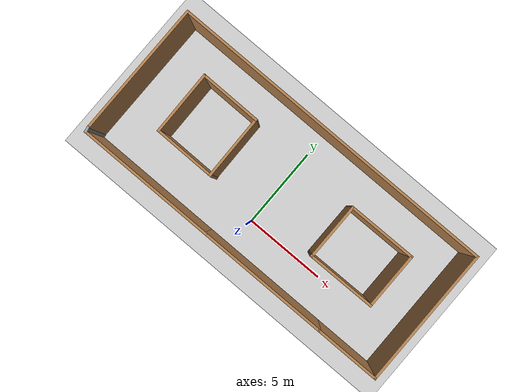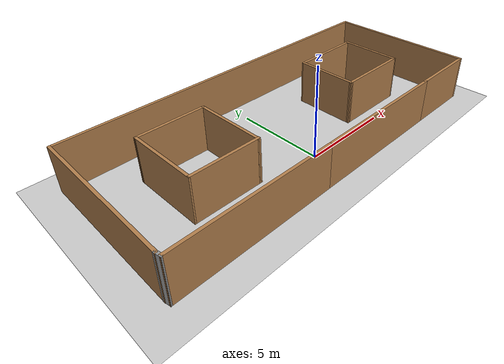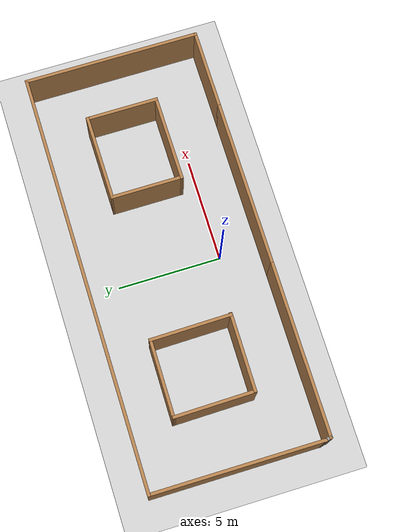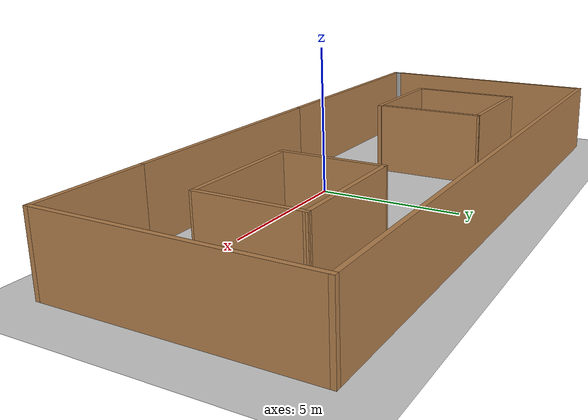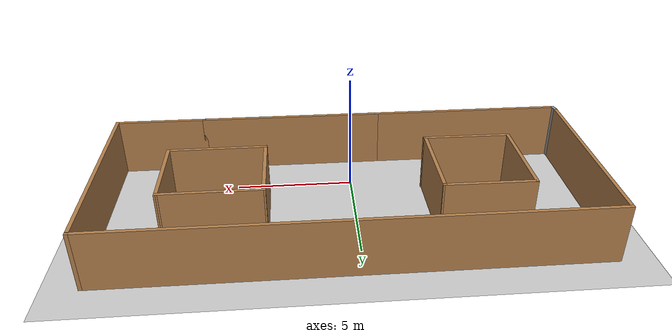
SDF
<sdf version="1.7">
 <world name="default">
  <light name="sun" type="directional">
   <pose>0 0 10 0 -0 0</pose>
   <diffuse>0.8 0.8 0.8 1</diffuse>
   <specular>0.2 0.2 0.2 1</specular>
   <attenuation>
    <range>1000</range>
    <constant>0.9</constant>
    <linear>0.01</linear>
    <quadratic>0.001</quadratic>
   </attenuation>
   <direction>-0.5 0.1 -0.9</direction>
   <spot><inner_angle>0</inner_angle><outer_angle>0</outer_angle><falloff>0</falloff></spot>
  </light>
  <model name="ground_plane">
   <static>1</static>
   <link name="link">
    <collision name="collision">
     <geometry><plane><normal>0 0 1</normal><size>100 100</size></plane></geometry>
     <surface>
      <contact><collide_bitmask>65535</collide_bitmask></contact>
      <friction><ode><mu>100</mu><mu2>50</mu2></ode></friction>
     </surface>
    </collision>
    <visual name="visual">
     <cast_shadows>0</cast_shadows>
     <geometry><plane><normal>0 0 1</normal><size>100 100</size></plane></geometry>
     <material>
      <script><uri>file://media/materials/scripts/gazebo.material</uri><name>Gazebo/Grey</name></script>
     </material>
    </visual>
   </link>
  </model>
  <gravity>0 0 -9.8</gravity>
  <magnetic_field>6e-06 2.3e-05 -4.2e-05</magnetic_field>
  <atmosphere type="adiabatic"/>
  <physics type="ode">
   <max_step_size>0.001</max_step_size>
   <real_time_factor>1</real_time_factor>
   <real_time_update_rate>1000</real_time_update_rate>
  </physics>
  <scene><ambient>0.4 0.4 0.4 1</ambient><background>0.7 0.7 0.7 1</background><shadows>1</shadows></scene>
  <spherical_coordinates>
   <surface_model>EARTH_WGS84</surface_model>
   <latitude_deg>0</latitude_deg>
   <longitude_deg>0</longitude_deg>
   <elevation>0</elevation>
   <heading_deg>0</heading_deg>
  </spherical_coordinates>
  <model name="maze1">
   <pose>0.279015 2.22144 0 0 -0 0</pose>
   <link name="Wall_0">
    <collision name="Wall_0_Collision">
     <geometry><box><size>8 0.15 2.5</size></box></geometry>
     <pose>0 0 1.25 0 -0 0</pose>
    </collision>
    <visual name="Wall_0_Visual">
     <pose>0 0 1.25 0 -0 0</pose>
     <geometry><box><size>8 0.15 2.5</size></box></geometry>
     <material>
      <script><uri>file://media/materials/scripts/gazebo.material</uri><name>Gazebo/Wood</name></script>
      <ambient>1 1 1 1</ambient>
     </material>
     <meta><layer>0</layer></meta>
    </visual>
    <pose>2.28163 -4.16837 0 0 -0 0</pose>
   </link>
   <link name="Wall_1">
    <collision name="Wall_1_Collision">
     <geometry><box><size>4 0.15 2.5</size></box></geometry>
     <pose>0 0 1.25 0 -0 0</pose>
    </collision>
    <visual name="Wall_1_Visual">
     <pose>0 0 1.25 0 -0 0</pose>
     <geometry><box><size>4 0.15 2.5</size></box></geometry>
     <material>
      <script><uri>file://media/materials/scripts/gazebo.material</uri><name>Gazebo/Wood</name></script>
      <ambient>1 1 1 1</ambient>
     </material>
     <meta><layer>0</layer></meta>
    </visual>
    <pose>8.13163 -4.16837 0 0 -0 0</pose>
   </link>
   <link name="Wall_10">
    <collision name="Wall_10_Collision">
     <geometry><box><size>3.5 0.15 2.5</size></box></geometry>
     <pose>0 0 1.25 0 -0 0</pose>
    </collision>
    <visual name="Wall_10_Visual">
     <pose>0 0 1.25 0 -0 0</pose>
     <geometry><box><size>3.5 0.15 2.5</size></box></geometry>
     <material>
      <script><uri>file://media/materials/scripts/gazebo.material</uri><name>Gazebo/Wood</name></script>
      <ambient>1 1 1 1</ambient>
     </material>
     <meta><layer>0</layer></meta>
    </visual>
    <pose>3.38368 0.238862 0 0 -0 -1.5708</pose>
   </link>
   <link name="Wall_12">
    <collision name="Wall_12_Collision">
     <geometry><box><size>3.5 0.15 2.5</size></box></geometry>
     <pose>0 0 1.25 0 -0 0</pose>
    </collision>
    <visual name="Wall_12_Visual">
     <pose>0 0 1.25 0 -0 0</pose>
     <geometry><box><size>3.5 0.15 2.5</size></box></geometry>
     <material>
      <script><uri>file://media/materials/scripts/gazebo.material</uri><name>Gazebo/Wood</name></script>
      <ambient>1 1 1 1</ambient>
     </material>
     <meta><layer>0</layer></meta>
    </visual>
    <pose>7.41628 0.260212 0 0 -0 1.5708</pose>
   </link>
   <link name="Wall_15">
    <collision name="Wall_15_Collision">
     <geometry><box><size>3.92357 0.15 2.5</size></box></geometry>
     <pose>0 0 1.25 0 -0 0</pose>
    </collision>
    <visual name="Wall_15_Visual">
     <pose>0 0 1.25 0 -0 0</pose>
     <geometry><box><size>3.92357 0.15 2.5</size></box></geometry>
     <material>
      <script><uri>file://media/materials/scripts/gazebo.material</uri><name>Gazebo/Wood</name></script>
      <ambient>1 1 1 1</ambient>
     </material>
     <meta><layer>0</layer></meta>
    </visual>
    <pose>-7.11697 0.260212 0 0 -0 -1.55678</pose>
   </link>
   <link name="Wall_16">
    <collision name="Wall_16_Collision">
     <geometry><box><size>3.7595 0.15 2.5</size></box></geometry>
     <pose>0 0 1.25 0 -0 0</pose>
    </collision>
    <visual name="Wall_16_Visual">
     <pose>0 0 1.25 0 -0 0</pose>
     <geometry><box><size>3.7595 0.15 2.5</size></box></geometry>
     <material>
      <script><uri>file://media/materials/scripts/gazebo.material</uri><name>Gazebo/Wood</name></script>
      <ambient>1 1 1 1</ambient>
     </material>
     <meta><layer>0</layer></meta>
    </visual>
    <pose>-5.25937 -1.63961 0 0 -0 -0.007328</pose>
   </link>
   <link name="Wall_17">
    <collision name="Wall_17_Collision">
     <geometry><box><size>3.95002 0.15 2.5</size></box></geometry>
     <pose>0 0 1.25 0 -0 0</pose>
    </collision>
    <visual name="Wall_17_Visual">
     <pose>0 0 1.25 0 -0 0</pose>
     <geometry><box><size>3.95002 0.15 2.5</size></box></geometry>
     <material>
      <script><uri>file://media/materials/scripts/gazebo.material</uri><name>Gazebo/Wood</name></script>
      <ambient>1 1 1 1</ambient>
     </material>
     <meta><layer>0</layer></meta>
    </visual>
    <pose>-3.50757 0.246987 0 0 -0 1.58472</pose>
   </link>
   <link name="Wall_18">
    <collision name="Wall_18_Collision">
     <geometry><box><size>3.75979 0.15 2.5</size></box></geometry>
     <pose>0 0 1.25 0 -0 0</pose>
    </collision>
    <visual name="Wall_18_Visual">
     <pose>0 0 1.25 0 -0 0</pose>
     <geometry><box><size>3.75979 0.15 2.5</size></box></geometry>
     <material>
      <script><uri>file://media/materials/scripts/gazebo.material</uri><name>Gazebo/Wood</name></script>
      <ambient>1 1 1 1</ambient>
     </material>
     <meta><layer>0</layer></meta>
    </visual>
    <pose>-5.33872 2.16004 0 0 -0 3.13427</pose>
   </link>
   <link name="Wall_2">
    <collision name="Wall_2_Collision">
     <geometry><box><size>8.5 0.15 2.5</size></box></geometry>
     <pose>0 0 1.25 0 -0 0</pose>
    </collision>
    <visual name="Wall_2_Visual">
     <pose>0 0 1.25 0 -0 0</pose>
     <geometry><box><size>8.5 0.15 2.5</size></box></geometry>
     <material>
      <script><uri>file://media/materials/scripts/gazebo.material</uri><name>Gazebo/Wood</name></script>
      <ambient>1 1 1 1</ambient>
     </material>
     <meta><layer>0</layer></meta>
    </visual>
    <pose>10.0566 0.006626 0 0 -0 1.5708</pose>
   </link>
   <link name="Wall_20">
    <collision name="Wall_20_Collision">
     <geometry><box><size>4.18266 0.15 2.5</size></box></geometry>
     <pose>0 0 1.25 0 -0 0</pose>
    </collision>
    <visual name="Wall_20_Visual">
     <pose>0 0 1.25 0 -0 0</pose>
     <geometry><box><size>4.18266 0.15 2.5</size></box></geometry>
     <material>
      <script><uri>file://media/materials/scripts/gazebo.material</uri><name>Gazebo/Wood</name></script>
      <ambient>1 1 1 1</ambient>
     </material>
     <meta><layer>0</layer></meta>
    </visual>
    <pose>5.39998 -1.42546 0 0 -0 0.005294</pose>
   </link>
   <link name="Wall_22">
    <collision name="Wall_22_Collision">
     <geometry><box><size>4.18266 0.15 2.5</size></box></geometry>
     <pose>0 0 1.25 0 -0 0</pose>
    </collision>
    <visual name="Wall_22_Visual">
     <pose>0 0 1.25 0 -0 0</pose>
     <geometry><box><size>4.18266 0.15 2.5</size></box></geometry>
     <material>
      <script><uri>file://media/materials/scripts/gazebo.material</uri><name>Gazebo/Wood</name></script>
      <ambient>1 1 1 1</ambient>
     </material>
     <meta><layer>0</layer></meta>
    </visual>
    <pose>5.39998 1.92454 0 0 -0 -3.1363</pose>
   </link>
   <link name="Wall_3">
    <collision name="Wall_3_Collision">
     <geometry><box><size>20.25 0.15 2.5</size></box></geometry>
     <pose>0 0 1.25 0 -0 0</pose>
    </collision>
    <visual name="Wall_3_Visual">
     <pose>0 0 1.25 0 -0 0</pose>
     <geometry><box><size>20.25 0.15 2.5</size></box></geometry>
     <material>
      <script><uri>file://media/materials/scripts/gazebo.material</uri><name>Gazebo/Wood</name></script>
      <ambient>1 1 1 1</ambient>
     </material>
     <meta><layer>0</layer></meta>
    </visual>
    <pose>0.006626 4.18163 0 0 -0 3.14159</pose>
   </link>
   <link name="Wall_4">
    <collision name="Wall_4_Collision">
     <geometry><box><size>8.25 0.15 2.5</size></box></geometry>
     <pose>0 0 1.25 0 -0 0</pose>
    </collision>
    <visual name="Wall_4_Visual">
     <pose>0 0 1.25 0 -0 0</pose>
     <geometry><box><size>8.25 0.15 2.5</size></box></geometry>
     <material>
      <script><uri>file://media/materials/scripts/gazebo.material</uri><name>Gazebo/Wood</name></script>
      <ambient>1 1 1 1</ambient>
     </material>
     <meta><layer>0</layer></meta>
    </visual>
    <pose>-10.0434 0.131626 0 0 -0 -1.5708</pose>
   </link>
   <link name="Wall_6">
    <collision name="Wall_6_Collision">
     <geometry><box><size>8.5 0.15 2.5</size></box></geometry>
     <pose>0 0 1.25 0 -0 0</pose>
    </collision>
    <visual name="Wall_6_Visual">
     <pose>0 0 1.25 0 -0 0</pose>
     <geometry><box><size>8.5 0.15 2.5</size></box></geometry>
     <material>
      <script><uri>file://media/materials/scripts/gazebo.material</uri><name>Gazebo/Wood</name></script>
      <ambient>1 1 1 1</ambient>
     </material>
     <meta><layer>0</layer></meta>
    </visual>
    <pose>-5.81837 -4.16837 0 0 -0 3.14159</pose>
   </link>
   <link name="Wall_8">
    <collision name="Wall_8_Collision">
     <geometry><box><size>0.404951 0.15 2.5</size></box></geometry>
     <pose>0 0 1.25 0 -0 0</pose>
    </collision>
    <visual name="Wall_8_Visual">
     <pose>0 0 1.25 0 -0 0</pose>
     <geometry><box><size>0.404951 0.15 2.5</size></box></geometry>
     <material>
      <script><uri>file://media/materials/scripts/gazebo.material</uri><name>Gazebo/Grey</name></script>
      <ambient>1 1 1 1</ambient>
     </material>
     <meta><layer>0</layer></meta>
    </visual>
    <pose>-10.0184 -4.04337 0 0 -0 -1.3734</pose>
   </link>
   <static>1</static>
  </model>
 </world>
</sdf>
